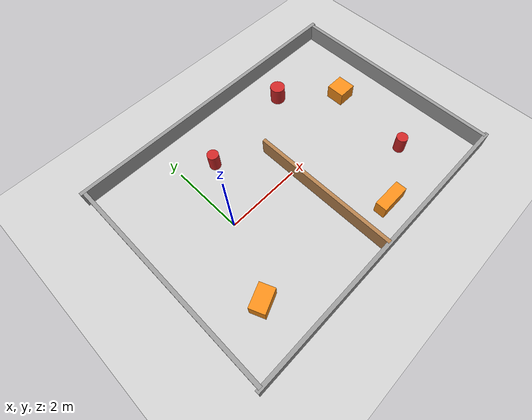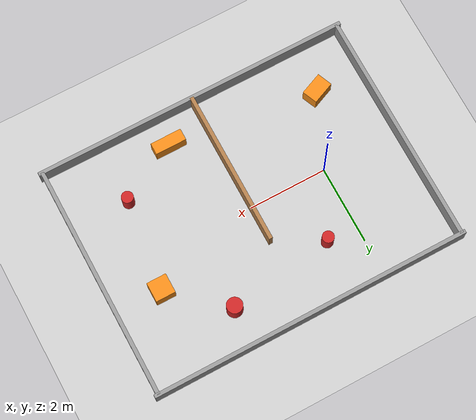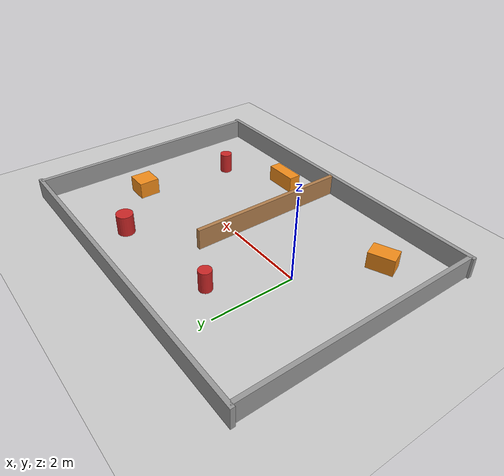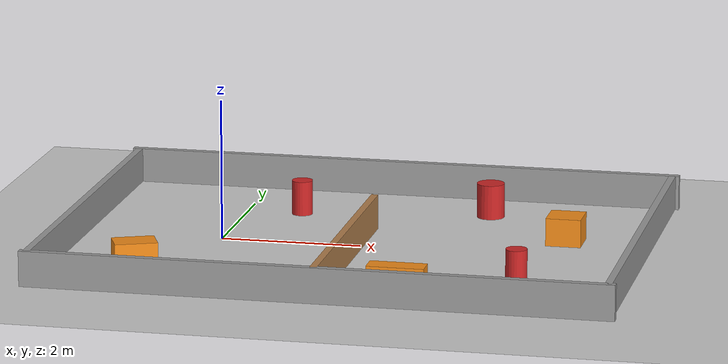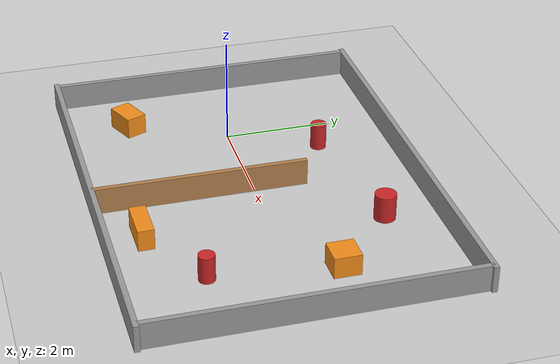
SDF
<?xml version="1.0" ?>
<!-- Semi-structured indoor arena (8 m x 6 m) with walls, cylinders and blocks.
     The robot spawns at the origin (0, 0), which is inside the arena. -->
<sdf version="1.6">
  <world name="ugv_arena">

    <include>
      <uri>model://sun</uri>
    </include>
    <include>
      <uri>model://ground_plane</uri>
    </include>

    <physics type="ode">
      <real_time_update_rate>1000</real_time_update_rate>
      <max_step_size>0.001</max_step_size>
    </physics>

    <model name="arena">
      <static>true</static>

      <!-- Outer walls: arena spans x [-2, 6], y [-3, 3] -->
      <link name="wall_north">
        <pose>2 3 0.25 0 0 0</pose>
        <collision name="c"><geometry><box><size>8.2 0.1 0.5</size></box></geometry></collision>
        <visual name="v"><geometry><box><size>8.2 0.1 0.5</size></box></geometry>
          <material><script><uri>file://media/materials/scripts/gazebo.material</uri><name>Gazebo/Grey</name></script></material></visual>
      </link>
      <link name="wall_south">
        <pose>2 -3 0.25 0 0 0</pose>
        <collision name="c"><geometry><box><size>8.2 0.1 0.5</size></box></geometry></collision>
        <visual name="v"><geometry><box><size>8.2 0.1 0.5</size></box></geometry>
          <material><script><uri>file://media/materials/scripts/gazebo.material</uri><name>Gazebo/Grey</name></script></material></visual>
      </link>
      <link name="wall_east">
        <pose>6 0 0.25 0 0 0</pose>
        <collision name="c"><geometry><box><size>0.1 6 0.5</size></box></geometry></collision>
        <visual name="v"><geometry><box><size>0.1 6 0.5</size></box></geometry>
          <material><script><uri>file://media/materials/scripts/gazebo.material</uri><name>Gazebo/Grey</name></script></material></visual>
      </link>
      <link name="wall_west">
        <pose>-2 0 0.25 0 0 0</pose>
        <collision name="c"><geometry><box><size>0.1 6 0.5</size></box></geometry></collision>
        <visual name="v"><geometry><box><size>0.1 6 0.5</size></box></geometry>
          <material><script><uri>file://media/materials/scripts/gazebo.material</uri><name>Gazebo/Grey</name></script></material></visual>
      </link>

      <!-- Partition wall with a gap, forces the planner to route around -->
      <link name="partition">
        <pose>2 -1 0.25 0 0 0</pose>
        <collision name="c"><geometry><box><size>0.1 4 0.5</size></box></geometry></collision>
        <visual name="v"><geometry><box><size>0.1 4 0.5</size></box></geometry>
          <material><script><uri>file://media/materials/scripts/gazebo.material</uri><name>Gazebo/Wood</name></script></material></visual>
      </link>

      <!-- Cylindrical obstacles -->
      <link name="cyl_1">
        <pose>0.8 1.6 0.25 0 0 0</pose>
        <collision name="c"><geometry><cylinder><radius>0.15</radius><length>0.5</length></cylinder></geometry></collision>
        <visual name="v"><geometry><cylinder><radius>0.15</radius><length>0.5</length></cylinder></geometry>
          <material><script><uri>file://media/materials/scripts/gazebo.material</uri><name>Gazebo/Red</name></script></material></visual>
      </link>
      <link name="cyl_2">
        <pose>3.5 2.0 0.25 0 0 0</pose>
        <collision name="c"><geometry><cylinder><radius>0.2</radius><length>0.5</length></cylinder></geometry></collision>
        <visual name="v"><geometry><cylinder><radius>0.2</radius><length>0.5</length></cylinder></geometry>
          <material><script><uri>file://media/materials/scripts/gazebo.material</uri><name>Gazebo/Red</name></script></material></visual>
      </link>
      <link name="cyl_3">
        <pose>4.5 -1.5 0.25 0 0 0</pose>
        <collision name="c"><geometry><cylinder><radius>0.15</radius><length>0.5</length></cylinder></geometry></collision>
        <visual name="v"><geometry><cylinder><radius>0.15</radius><length>0.5</length></cylinder></geometry>
          <material><script><uri>file://media/materials/scripts/gazebo.material</uri><name>Gazebo/Red</name></script></material></visual>
      </link>

      <!-- Static blocks -->
      <link name="block_1">
        <pose>-0.8 -1.8 0.2 0 0 0.4</pose>
        <collision name="c"><geometry><box><size>0.6 0.4 0.4</size></box></geometry></collision>
        <visual name="v"><geometry><box><size>0.6 0.4 0.4</size></box></geometry>
          <material><script><uri>file://media/materials/scripts/gazebo.material</uri><name>Gazebo/Orange</name></script></material></visual>
      </link>
      <link name="block_2">
        <pose>4.8 0.8 0.2 0 0 0</pose>
        <collision name="c"><geometry><box><size>0.5 0.5 0.4</size></box></geometry></collision>
        <visual name="v"><geometry><box><size>0.5 0.5 0.4</size></box></geometry>
          <material><script><uri>file://media/materials/scripts/gazebo.material</uri><name>Gazebo/Orange</name></script></material></visual>
      </link>
      <link name="block_3">
        <pose>3.0 -2.3 0.2 0 0 0</pose>
        <collision name="c"><geometry><box><size>0.8 0.3 0.4</size></box></geometry></collision>
        <visual name="v"><geometry><box><size>0.8 0.3 0.4</size></box></geometry>
          <material><script><uri>file://media/materials/scripts/gazebo.material</uri><name>Gazebo/Orange</name></script></material></visual>
      </link>
    </model>

  </world>
</sdf>
